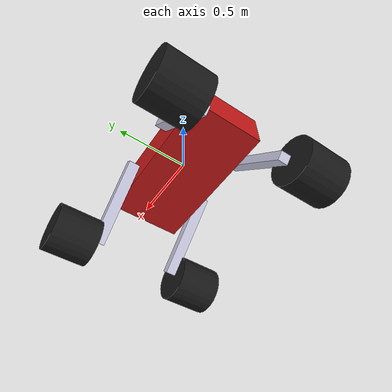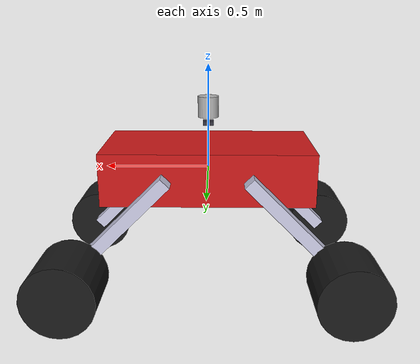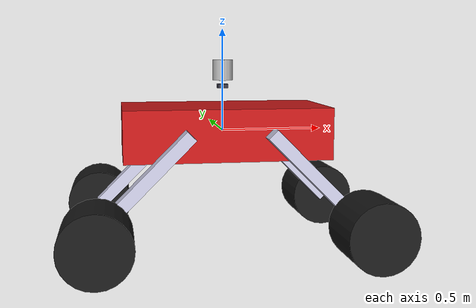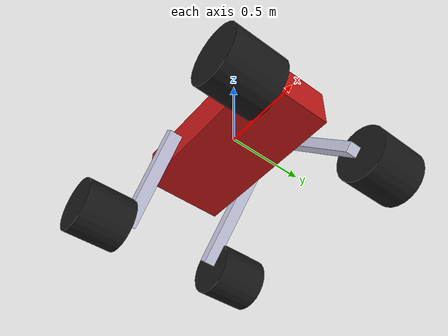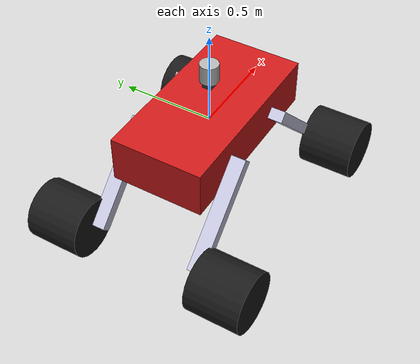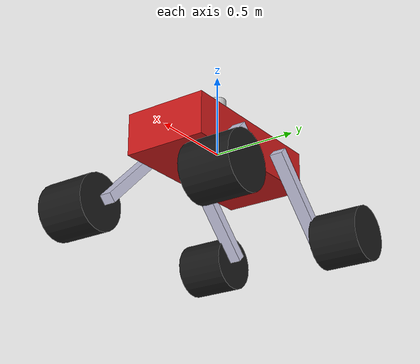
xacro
<?xml version="1.0"?>
<robot xmlns:xacro="http://www.ros.org/wiki/xacro" name="rover_rigid_y_wheels">

  <!-- materials -->
  <material name="gray"><color rgba="0.7 0.7 0.7 1.0"/></material>
  <material name="black"><color rgba="0.1 0.1 0.1 1.0"/></material>
  <material name="dark"><color rgba="0.2 0.2 0.25 1.0"/></material>
  <material name="red"><color rgba="0.8 0.1 0.1 1.0"/></material>
  <material name="silver"><color rgba="0.8 0.8 0.9 1.0"/></material>

  <!-- Constants -->
  <xacro:property name="base_length" value="1.0"/>
  <xacro:property name="base_width" value="0.5"/>
  <xacro:property name="base_height" value="0.25"/>

  <xacro:property name="arm_length" value="0.6"/>
  <xacro:property name="arm_thickness" value="0.08"/>
  <xacro:property name="arm_depth" value="0.06"/>

  <xacro:property name="wheel_radius" value="0.165"/>
  <xacro:property name="wheel_width" value="0.3"/>

  <!-- BASE LINK -->
  <link name="base_link">
    <visual>
      <origin xyz="0 0 0" rpy="0 0 0"/>
      <geometry><box size="${base_length} ${base_width} ${base_height}"/></geometry>
      <material name="red"/>
    </visual>
    <collision>
      <origin xyz="0 0 0" rpy="0 0 0"/>
      <geometry><box size="${base_length} ${base_width} ${base_height}"/></geometry>
    </collision>
  </link>

<!-- IMU sensor -->
<link name="imu_link">
  <visual>
    <origin xyz="0 0 0.02" rpy="0 0 0"/>
    <geometry>
      <box size="0.05 0.05 0.02"/>
    </geometry>
    <material name="dark"/>
  </visual>
</link>

<joint name="imu_joint" type="fixed">
  <parent link="base_link"/>
  <child link="imu_link"/>
  <origin xyz="0 0 0.20" rpy="0 0 0"/>
</joint>

  <!-- LIDAR LINK -->
  <link name="lidar_link">
    <visual>
      <origin xyz="0 0 0.05" rpy="0 0 0"/>
      <geometry><cylinder radius="0.05" length="0.1"/></geometry>
      <material name="gray"/>
    </visual>
    <collision>
      <origin xyz="0 0 0.05" rpy="0 0 0"/>
      <geometry><cylinder radius="0.05" length="0.1"/></geometry>
    </collision>
    <inertial>
      <mass value="0.1"/>
      <inertia ixx="0.0001" iyy="0.0001" izz="0.0001"
               ixy="0.0" ixz="0.0" iyz="0.0"/>
    </inertial>
  </link>

  <joint name="lidar_joint" type="fixed">
    <parent link="base_link"/>
    <child link="lidar_link"/>
    <origin xyz="0 0 0.25" rpy="0 0 0"/>
  </joint>

  <!-- ARM MACRO -->
  <xacro:macro name="arm" params="name parent x_pos y_pos visual_origin visual_rpy">
    <link name="${name}">
      <visual>
        <origin xyz="${visual_origin}" rpy="${visual_rpy}"/>
        <geometry><box size="${arm_length} ${arm_thickness} ${arm_depth}"/></geometry>
        <material name="silver"/>
      </visual>
      <collision>
        <origin xyz="${visual_origin}" rpy="${visual_rpy}"/>
        <geometry><box size="${arm_length} ${arm_thickness} ${arm_depth}"/></geometry>
      </collision>
    </link>
    <joint name="fix_${name}" type="fixed">
      <parent link="${parent}"/>
      <child link="${name}"/>
      <origin xyz="${x_pos} ${y_pos} 0.000" rpy="0 0 0"/>
    </joint>
  </xacro:macro>

  <!-- WHEEL MACRO -->
  <xacro:macro name="wheel" params="name parent origin_xyz">
    <link name="${name}">
      <visual>
        <origin xyz="0 0 0" rpy="-1.5708 0 0"/>
        <geometry><cylinder radius="${wheel_radius}" length="${wheel_width}"/></geometry>
        <material name="black"/>
      </visual>
      <collision>
        <origin xyz="0 0 0" rpy="-1.5708 0 0"/>
        <geometry><cylinder radius="${wheel_radius}" length="${wheel_width}"/></geometry>
      </collision>
    </link>
    <joint name="fix_${name}" type="fixed">
      <parent link="${parent}"/>
      <child link="${name}"/>
      <origin xyz="${origin_xyz}" rpy="0 0 0"/>
    </joint>
  </xacro:macro>

  <!-- Instantiate Arms -->
  <xacro:arm name="arm_front_left" parent="base_link"
             x_pos="0.200" y_pos="0.520"
             visual_origin="0.2 -0.230 -0.2" visual_rpy="0 0.785398 0"/>

  <xacro:arm name="arm_front_right" parent="base_link"
             x_pos="0.200" y_pos="-0.520"
             visual_origin="0.2 0.230 -0.2" visual_rpy="0 0.785398 0"/>

  <xacro:arm name="arm_rear_left" parent="base_link"
             x_pos="-0.200" y_pos="0.520"
             visual_origin="-0.2 -0.230 -0.2" visual_rpy="0 0.785398 3.141593"/>

  <xacro:arm name="arm_rear_right" parent="base_link"
             x_pos="-0.200" y_pos="-0.520"
             visual_origin="-0.2 0.230 -0.2" visual_rpy="0 0.785398 3.141593"/>

  <!-- Instantiate Wheels -->
  <xacro:wheel name="wheel_front_left" parent="arm_front_left" origin_xyz="0.42426 -0.05 -0.424268"/>
  <xacro:wheel name="wheel_front_right" parent="arm_front_right" origin_xyz="0.42426 0.05 -0.424268"/>
  <xacro:wheel name="wheel_rear_left" parent="arm_rear_left" origin_xyz="-0.42426 -0.05 -0.424268"/>
  <xacro:wheel name="wheel_rear_right" parent="arm_rear_right" origin_xyz="-0.42426 0.05 -0.424268"/>

</robot>
